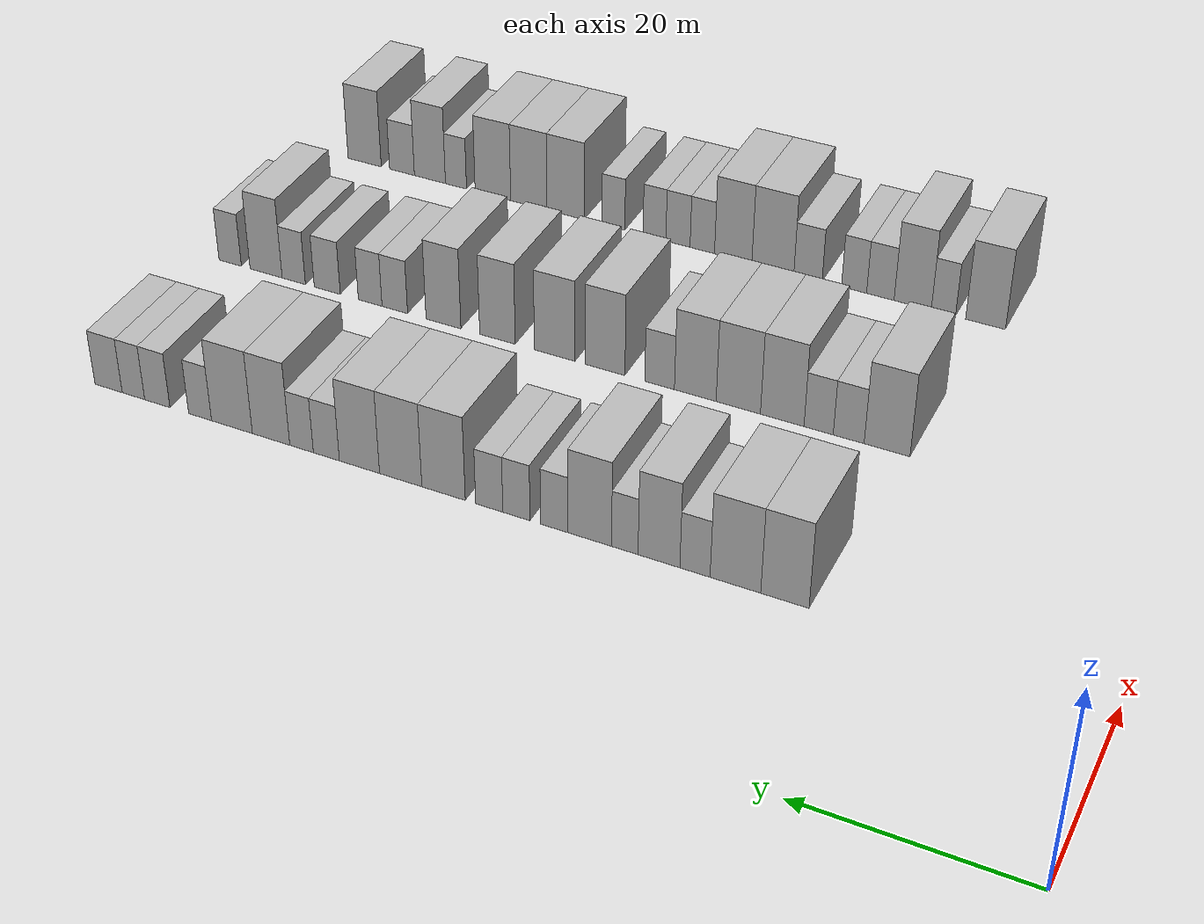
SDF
<sdf version="1.6">
 <world name="default">
  <model name="building_73">
   <static>1</static>
   <pose>25.0000 27.7432 0 0.000000 0.000000 0.000000</pose>
   <link name="link">
    <pose>0 0 4.50 0 0 0</pose>
    <collision name="collision"><geometry><box><size>10.0000 4.2041 9.0000</size></box></geometry></collision>
    <visual name="visual">
     <cast_shadows>0</cast_shadows>
     <geometry><box><size>10.0000 4.2041 9.0000</size></box></geometry>
     <material>
      <script>
       <uri>model://HANNAS_wall/materials/scripts</uri>
       <uri>model://HANNAS_wall/materials/textures</uri>
       <name>vrc/HANNAS_wall</name>
      </script>
     </material>
    </visual>
   </link>
  </model>
  <model name="building_74">
   <static>1</static>
   <pose>25.0000 32.0811 0 0.000000 0.000000 0.000000</pose>
   <link name="link">
    <pose>0 0 4.50 0 0 0</pose>
    <collision name="collision"><geometry><box><size>10.0000 4.4717 9.0000</size></box></geometry></collision>
    <visual name="visual">
     <cast_shadows>0</cast_shadows>
     <geometry><box><size>10.0000 4.4717 9.0000</size></box></geometry>
     <material>
      <script>
       <uri>model://HANNAS_wall/materials/scripts</uri>
       <uri>model://HANNAS_wall/materials/textures</uri>
       <name>vrc/HANNAS_wall</name>
      </script>
     </material>
    </visual>
   </link>
  </model>
  <model name="building_75">
   <static>1</static>
   <pose>25.0000 35.6679 0 0.000000 0.000000 0.000000</pose>
   <link name="link">
    <pose>0 0 3.00 0 0 0</pose>
    <collision name="collision"><geometry><box><size>10.0000 2.7019 6.0000</size></box></geometry></collision>
    <visual name="visual">
     <cast_shadows>0</cast_shadows>
     <geometry><box><size>10.0000 2.7019 6.0000</size></box></geometry>
     <material>
      <script>
       <uri>model://HANNAS_wall/materials/scripts</uri>
       <uri>model://HANNAS_wall/materials/textures</uri>
       <name>vrc/HANNAS_wall</name>
      </script>
     </material>
    </visual>
   </link>
  </model>
  <model name="building_76">
   <static>1</static>
   <pose>25.0000 38.9119 0 0.000000 0.000000 0.000000</pose>
   <link name="link">
    <pose>0 0 4.50 0 0 0</pose>
    <collision name="collision"><geometry><box><size>10.0000 3.7861 9.0000</size></box></geometry></collision>
    <visual name="visual">
     <cast_shadows>0</cast_shadows>
     <geometry><box><size>10.0000 3.7861 9.0000</size></box></geometry>
     <material>
      <script>
       <uri>model://HANNAS_wall/materials/scripts</uri>
       <uri>model://HANNAS_wall/materials/textures</uri>
       <name>vrc/HANNAS_wall</name>
      </script>
     </material>
    </visual>
   </link>
  </model>
  <model name="building_77">
   <static>1</static>
   <pose>25.0000 42.0162 0 0.000000 0.000000 0.000000</pose>
   <link name="link">
    <pose>0 0 3.00 0 0 0</pose>
    <collision name="collision"><geometry><box><size>10.0000 2.4225 6.0000</size></box></geometry></collision>
    <visual name="visual">
     <cast_shadows>0</cast_shadows>
     <geometry><box><size>10.0000 2.4225 6.0000</size></box></geometry>
     <material>
      <script>
       <uri>model://HANNAS_wall/materials/scripts</uri>
       <uri>model://HANNAS_wall/materials/textures</uri>
       <name>vrc/HANNAS_wall</name>
      </script>
     </material>
    </visual>
   </link>
  </model>
  <model name="building_78">
   <static>1</static>
   <pose>25.0000 45.2444 0 0.000000 0.000000 0.000000</pose>
   <link name="link">
    <pose>0 0 4.50 0 0 0</pose>
    <collision name="collision"><geometry><box><size>10.0000 4.0340 9.0000</size></box></geometry></collision>
    <visual name="visual">
     <cast_shadows>0</cast_shadows>
     <geometry><box><size>10.0000 4.0340 9.0000</size></box></geometry>
     <material>
      <script>
       <uri>model://HANNAS_wall/materials/scripts</uri>
       <uri>model://HANNAS_wall/materials/textures</uri>
       <name>vrc/HANNAS_wall</name>
      </script>
     </material>
    </visual>
   </link>
  </model>
  <model name="building_79">
   <static>1</static>
   <pose>25.0000 48.5405 0 0.000000 0.000000 0.000000</pose>
   <link name="link">
    <pose>0 0 3.00 0 0 0</pose>
    <collision name="collision"><geometry><box><size>10.0000 2.5583 6.0000</size></box></geometry></collision>
    <visual name="visual">
     <cast_shadows>0</cast_shadows>
     <geometry><box><size>10.0000 2.5583 6.0000</size></box></geometry>
     <material>
      <script>
       <uri>model://HANNAS_wall/materials/scripts</uri>
       <uri>model://HANNAS_wall/materials/textures</uri>
       <name>vrc/HANNAS_wall</name>
      </script>
     </material>
    </visual>
   </link>
  </model>
  <model name="building_80">
   <static>1</static>
   <pose>25.0000 52.1111 0 0.000000 0.000000 0.000000</pose>
   <link name="link">
    <pose>0 0 3.00 0 0 0</pose>
    <collision name="collision"><geometry><box><size>10.0000 2.5828 6.0000</size></box></geometry></collision>
    <visual name="visual">
     <cast_shadows>0</cast_shadows>
     <geometry><box><size>10.0000 2.5828 6.0000</size></box></geometry>
     <material>
      <script>
       <uri>model://HANNAS_wall/materials/scripts</uri>
       <uri>model://HANNAS_wall/materials/textures</uri>
       <name>vrc/HANNAS_wall</name>
      </script>
     </material>
    </visual>
   </link>
  </model>
  <model name="building_81">
   <static>1</static>
   <pose>25.0000 54.7055 0 0.000000 0.000000 0.000000</pose>
   <link name="link">
    <pose>0 0 3.00 0 0 0</pose>
    <collision name="collision"><geometry><box><size>10.0000 2.6060 6.0000</size></box></geometry></collision>
    <visual name="visual">
     <cast_shadows>0</cast_shadows>
     <geometry><box><size>10.0000 2.6060 6.0000</size></box></geometry>
     <material>
      <script>
       <uri>model://HANNAS_wall/materials/scripts</uri>
       <uri>model://HANNAS_wall/materials/textures</uri>
       <name>vrc/HANNAS_wall</name>
      </script>
     </material>
    </visual>
   </link>
  </model>
  <model name="building_82">
   <static>1</static>
   <pose>25.0000 59.1252 0 0.000000 0.000000 0.000000</pose>
   <link name="link">
    <pose>0 0 4.50 0 0 0</pose>
    <collision name="collision"><geometry><box><size>10.0000 4.2336 9.0000</size></box></geometry></collision>
    <visual name="visual">
     <cast_shadows>0</cast_shadows>
     <geometry><box><size>10.0000 4.2336 9.0000</size></box></geometry>
     <material>
      <script>
       <uri>model://HANNAS_wall/materials/scripts</uri>
       <uri>model://HANNAS_wall/materials/textures</uri>
       <name>vrc/HANNAS_wall</name>
      </script>
     </material>
    </visual>
   </link>
  </model>
  <model name="building_83">
   <static>1</static>
   <pose>25.0000 63.3339 0 0.000000 0.000000 0.000000</pose>
   <link name="link">
    <pose>0 0 4.50 0 0 0</pose>
    <collision name="collision"><geometry><box><size>10.0000 4.1838 9.0000</size></box></geometry></collision>
    <visual name="visual">
     <cast_shadows>0</cast_shadows>
     <geometry><box><size>10.0000 4.1838 9.0000</size></box></geometry>
     <material>
      <script>
       <uri>model://HANNAS_wall/materials/scripts</uri>
       <uri>model://HANNAS_wall/materials/textures</uri>
       <name>vrc/HANNAS_wall</name>
      </script>
     </material>
    </visual>
   </link>
  </model>
  <model name="building_84">
   <static>1</static>
   <pose>25.0000 67.4356 0 0.000000 0.000000 0.000000</pose>
   <link name="link">
    <pose>0 0 4.50 0 0 0</pose>
    <collision name="collision"><geometry><box><size>10.0000 4.0194 9.0000</size></box></geometry></collision>
    <visual name="visual">
     <cast_shadows>0</cast_shadows>
     <geometry><box><size>10.0000 4.0194 9.0000</size></box></geometry>
     <material>
      <script>
       <uri>model://HANNAS_wall/materials/scripts</uri>
       <uri>model://HANNAS_wall/materials/textures</uri>
       <name>vrc/HANNAS_wall</name>
      </script>
     </material>
    </visual>
   </link>
  </model>
  <model name="building_85">
   <static>1</static>
   <pose>25.0000 70.7655 0 0.000000 0.000000 0.000000</pose>
   <link name="link">
    <pose>0 0 3.00 0 0 0</pose>
    <collision name="collision"><geometry><box><size>10.0000 2.6405 6.0000</size></box></geometry></collision>
    <visual name="visual">
     <cast_shadows>0</cast_shadows>
     <geometry><box><size>10.0000 2.6405 6.0000</size></box></geometry>
     <material>
      <script>
       <uri>model://HANNAS_wall/materials/scripts</uri>
       <uri>model://HANNAS_wall/materials/textures</uri>
       <name>vrc/HANNAS_wall</name>
      </script>
     </material>
    </visual>
   </link>
  </model>
  <model name="building_86">
   <static>1</static>
   <pose>25.0000 73.2905 0 0.000000 0.000000 0.000000</pose>
   <link name="link">
    <pose>0 0 3.00 0 0 0</pose>
    <collision name="collision"><geometry><box><size>10.0000 2.4094 6.0000</size></box></geometry></collision>
    <visual name="visual">
     <cast_shadows>0</cast_shadows>
     <geometry><box><size>10.0000 2.4094 6.0000</size></box></geometry>
     <material>
      <script>
       <uri>model://HANNAS_wall/materials/scripts</uri>
       <uri>model://HANNAS_wall/materials/textures</uri>
       <name>vrc/HANNAS_wall</name>
      </script>
     </material>
    </visual>
   </link>
  </model>
  <model name="building_87">
   <static>1</static>
   <pose>25.0000 76.4296 0 0.000000 0.000000 0.000000</pose>
   <link name="link">
    <pose>0 0 4.50 0 0 0</pose>
    <collision name="collision"><geometry><box><size>10.0000 3.8688 9.0000</size></box></geometry></collision>
    <visual name="visual">
     <cast_shadows>0</cast_shadows>
     <geometry><box><size>10.0000 3.8688 9.0000</size></box></geometry>
     <material>
      <script>
       <uri>model://HANNAS_wall/materials/scripts</uri>
       <uri>model://HANNAS_wall/materials/textures</uri>
       <name>vrc/HANNAS_wall</name>
      </script>
     </material>
    </visual>
   </link>
  </model>
  <model name="building_88">
   <static>1</static>
   <pose>25.0000 80.5083 0 0.000000 0.000000 0.000000</pose>
   <link name="link">
    <pose>0 0 4.50 0 0 0</pose>
    <collision name="collision"><geometry><box><size>10.0000 4.2887 9.0000</size></box></geometry></collision>
    <visual name="visual">
     <cast_shadows>0</cast_shadows>
     <geometry><box><size>10.0000 4.2887 9.0000</size></box></geometry>
     <material>
      <script>
       <uri>model://HANNAS_wall/materials/scripts</uri>
       <uri>model://HANNAS_wall/materials/textures</uri>
       <name>vrc/HANNAS_wall</name>
      </script>
     </material>
    </visual>
   </link>
  </model>
  <model name="building_89">
   <static>1</static>
   <pose>25.0000 83.8661 0 0.000000 0.000000 0.000000</pose>
   <link name="link">
    <pose>0 0 3.00 0 0 0</pose>
    <collision name="collision"><geometry><box><size>10.0000 2.4269 6.0000</size></box></geometry></collision>
    <visual name="visual">
     <cast_shadows>0</cast_shadows>
     <geometry><box><size>10.0000 2.4269 6.0000</size></box></geometry>
     <material>
      <script>
       <uri>model://HANNAS_wall/materials/scripts</uri>
       <uri>model://HANNAS_wall/materials/textures</uri>
       <name>vrc/HANNAS_wall</name>
      </script>
     </material>
    </visual>
   </link>
  </model>
  <model name="building_90">
   <static>1</static>
   <pose>25.0000 88.4380 0 0.000000 0.000000 0.000000</pose>
   <link name="link">
    <pose>0 0 3.00 0 0 0</pose>
    <collision name="collision"><geometry><box><size>10.0000 2.7169 6.0000</size></box></geometry></collision>
    <visual name="visual">
     <cast_shadows>0</cast_shadows>
     <geometry><box><size>10.0000 2.7169 6.0000</size></box></geometry>
     <material>
      <script>
       <uri>model://HANNAS_wall/materials/scripts</uri>
       <uri>model://HANNAS_wall/materials/textures</uri>
       <name>vrc/HANNAS_wall</name>
      </script>
     </material>
    </visual>
   </link>
  </model>
  <model name="building_91">
   <static>1</static>
   <pose>25.0000 91.0174 0 0.000000 0.000000 0.000000</pose>
   <link name="link">
    <pose>0 0 3.00 0 0 0</pose>
    <collision name="collision"><geometry><box><size>10.0000 2.4419 6.0000</size></box></geometry></collision>
    <visual name="visual">
     <cast_shadows>0</cast_shadows>
     <geometry><box><size>10.0000 2.4419 6.0000</size></box></geometry>
     <material>
      <script>
       <uri>model://HANNAS_wall/materials/scripts</uri>
       <uri>model://HANNAS_wall/materials/textures</uri>
       <name>vrc/HANNAS_wall</name>
      </script>
     </material>
    </visual>
   </link>
  </model>
  <model name="building_92">
   <static>1</static>
   <pose>25.0000 93.7304 0 0.000000 0.000000 0.000000</pose>
   <link name="link">
    <pose>0 0 3.00 0 0 0</pose>
    <collision name="collision"><geometry><box><size>10.0000 2.9841 6.0000</size></box></geometry></collision>
    <visual name="visual">
     <cast_shadows>0</cast_shadows>
     <geometry><box><size>10.0000 2.9841 6.0000</size></box></geometry>
     <material>
      <script>
       <uri>model://HANNAS_wall/materials/scripts</uri>
       <uri>model://HANNAS_wall/materials/textures</uri>
       <name>vrc/HANNAS_wall</name>
      </script>
     </material>
    </visual>
   </link>
  </model>
  <model name="building_200">
   <static>1</static>
   <pose>47.0000 26.7189 0 0.000000 0.000000 0.000000</pose>
   <link name="link">
    <pose>0 0 4.50 0 0 0</pose>
    <collision name="collision"><geometry><box><size>10.0000 4.2521 9.0000</size></box></geometry></collision>
    <visual name="visual">
     <cast_shadows>0</cast_shadows>
     <geometry><box><size>10.0000 4.2521 9.0000</size></box></geometry>
     <material>
      <script>
       <uri>model://HANNAS_wall/materials/scripts</uri>
       <uri>model://HANNAS_wall/materials/textures</uri>
       <name>vrc/HANNAS_wall</name>
      </script>
     </material>
    </visual>
   </link>
  </model>
  <model name="building_201">
   <static>1</static>
   <pose>47.0000 30.2941 0 0.000000 0.000000 0.000000</pose>
   <link name="link">
    <pose>0 0 3.00 0 0 0</pose>
    <collision name="collision"><geometry><box><size>10.0000 2.8982 6.0000</size></box></geometry></collision>
    <visual name="visual">
     <cast_shadows>0</cast_shadows>
     <geometry><box><size>10.0000 2.8982 6.0000</size></box></geometry>
     <material>
      <script>
       <uri>model://HANNAS_wall/materials/scripts</uri>
       <uri>model://HANNAS_wall/materials/textures</uri>
       <name>vrc/HANNAS_wall</name>
      </script>
     </material>
    </visual>
   </link>
  </model>
  <model name="building_202">
   <static>1</static>
   <pose>47.0000 33.1275 0 0.000000 0.000000 0.000000</pose>
   <link name="link">
    <pose>0 0 3.00 0 0 0</pose>
    <collision name="collision"><geometry><box><size>10.0000 2.7687 6.0000</size></box></geometry></collision>
    <visual name="visual">
     <cast_shadows>0</cast_shadows>
     <geometry><box><size>10.0000 2.7687 6.0000</size></box></geometry>
     <material>
      <script>
       <uri>model://HANNAS_wall/materials/scripts</uri>
       <uri>model://HANNAS_wall/materials/textures</uri>
       <name>vrc/HANNAS_wall</name>
      </script>
     </material>
    </visual>
   </link>
  </model>
  <model name="building_203">
   <static>1</static>
   <pose>47.0000 36.6004 0 0.000000 0.000000 0.000000</pose>
   <link name="link">
    <pose>0 0 4.50 0 0 0</pose>
    <collision name="collision"><geometry><box><size>10.0000 4.1770 9.0000</size></box></geometry></collision>
    <visual name="visual">
     <cast_shadows>0</cast_shadows>
     <geometry><box><size>10.0000 4.1770 9.0000</size></box></geometry>
     <material>
      <script>
       <uri>model://HANNAS_wall/materials/scripts</uri>
       <uri>model://HANNAS_wall/materials/textures</uri>
       <name>vrc/HANNAS_wall</name>
      </script>
     </material>
    </visual>
   </link>
  </model>
  <model name="building_204">
   <static>1</static>
   <pose>47.0000 40.8419 0 0.000000 0.000000 0.000000</pose>
   <link name="link">
    <pose>0 0 4.50 0 0 0</pose>
    <collision name="collision"><geometry><box><size>10.0000 4.3059 9.0000</size></box></geometry></collision>
    <visual name="visual">
     <cast_shadows>0</cast_shadows>
     <geometry><box><size>10.0000 4.3059 9.0000</size></box></geometry>
     <material>
      <script>
       <uri>model://HANNAS_wall/materials/scripts</uri>
       <uri>model://HANNAS_wall/materials/textures</uri>
       <name>vrc/HANNAS_wall</name>
      </script>
     </material>
    </visual>
   </link>
  </model>
  <model name="building_205">
   <static>1</static>
   <pose>47.0000 45.0529 0 0.000000 0.000000 0.000000</pose>
   <link name="link">
    <pose>0 0 4.50 0 0 0</pose>
    <collision name="collision"><geometry><box><size>10.0000 4.1163 9.0000</size></box></geometry></collision>
    <visual name="visual">
     <cast_shadows>0</cast_shadows>
     <geometry><box><size>10.0000 4.1163 9.0000</size></box></geometry>
     <material>
      <script>
       <uri>model://HANNAS_wall/materials/scripts</uri>
       <uri>model://HANNAS_wall/materials/textures</uri>
       <name>vrc/HANNAS_wall</name>
      </script>
     </material>
    </visual>
   </link>
  </model>
  <model name="building_206">
   <static>1</static>
   <pose>47.0000 48.5873 0 0.000000 0.000000 0.000000</pose>
   <link name="link">
    <pose>0 0 3.00 0 0 0</pose>
    <collision name="collision"><geometry><box><size>10.0000 2.9526 6.0000</size></box></geometry></collision>
    <visual name="visual">
     <cast_shadows>0</cast_shadows>
     <geometry><box><size>10.0000 2.9526 6.0000</size></box></geometry>
     <material>
      <script>
       <uri>model://HANNAS_wall/materials/scripts</uri>
       <uri>model://HANNAS_wall/materials/textures</uri>
       <name>vrc/HANNAS_wall</name>
      </script>
     </material>
    </visual>
   </link>
  </model>
  <model name="building_207">
   <static>1</static>
   <pose>47.0000 54.0988 0 0.000000 0.000000 0.000000</pose>
   <link name="link">
    <pose>0 0 4.50 0 0 0</pose>
    <collision name="collision"><geometry><box><size>10.0000 4.0703 9.0000</size></box></geometry></collision>
    <visual name="visual">
     <cast_shadows>0</cast_shadows>
     <geometry><box><size>10.0000 4.0703 9.0000</size></box></geometry>
     <material>
      <script>
       <uri>model://HANNAS_wall/materials/scripts</uri>
       <uri>model://HANNAS_wall/materials/textures</uri>
       <name>vrc/HANNAS_wall</name>
      </script>
     </material>
    </visual>
   </link>
  </model>
  <model name="building_208">
   <static>1</static>
   <pose>47.0000 59.2337 0 0.000000 0.000000 0.000000</pose>
   <link name="link">
    <pose>0 0 4.50 0 0 0</pose>
    <collision name="collision"><geometry><box><size>10.0000 4.1995 9.0000</size></box></geometry></collision>
    <visual name="visual">
     <cast_shadows>0</cast_shadows>
     <geometry><box><size>10.0000 4.1995 9.0000</size></box></geometry>
     <material>
      <script>
       <uri>model://HANNAS_wall/materials/scripts</uri>
       <uri>model://HANNAS_wall/materials/textures</uri>
       <name>vrc/HANNAS_wall</name>
      </script>
     </material>
    </visual>
   </link>
  </model>
  <model name="building_209">
   <static>1</static>
   <pose>47.0000 65.2082 0 0.000000 0.000000 0.000000</pose>
   <link name="link">
    <pose>0 0 4.50 0 0 0</pose>
    <collision name="collision"><geometry><box><size>10.0000 3.7494 9.0000</size></box></geometry></collision>
    <visual name="visual">
     <cast_shadows>0</cast_shadows>
     <geometry><box><size>10.0000 3.7494 9.0000</size></box></geometry>
     <material>
      <script>
       <uri>model://HANNAS_wall/materials/scripts</uri>
       <uri>model://HANNAS_wall/materials/textures</uri>
       <name>vrc/HANNAS_wall</name>
      </script>
     </material>
    </visual>
   </link>
  </model>
  <model name="building_210">
   <static>1</static>
   <pose>47.0000 70.9546 0 0.000000 0.000000 0.000000</pose>
   <link name="link">
    <pose>0 0 4.50 0 0 0</pose>
    <collision name="collision"><geometry><box><size>10.0000 3.7433 9.0000</size></box></geometry></collision>
    <visual name="visual">
     <cast_shadows>0</cast_shadows>
     <geometry><box><size>10.0000 3.7433 9.0000</size></box></geometry>
     <material>
      <script>
       <uri>model://HANNAS_wall/materials/scripts</uri>
       <uri>model://HANNAS_wall/materials/textures</uri>
       <name>vrc/HANNAS_wall</name>
      </script>
     </material>
    </visual>
   </link>
  </model>
  <model name="building_211">
   <static>1</static>
   <pose>47.0000 76.2236 0 0.000000 0.000000 0.000000</pose>
   <link name="link">
    <pose>0 0 3.00 0 0 0</pose>
    <collision name="collision"><geometry><box><size>10.0000 2.7949 6.0000</size></box></geometry></collision>
    <visual name="visual">
     <cast_shadows>0</cast_shadows>
     <geometry><box><size>10.0000 2.7949 6.0000</size></box></geometry>
     <material>
      <script>
       <uri>model://HANNAS_wall/materials/scripts</uri>
       <uri>model://HANNAS_wall/materials/textures</uri>
       <name>vrc/HANNAS_wall</name>
      </script>
     </material>
    </visual>
   </link>
  </model>
  <model name="building_212">
   <static>1</static>
   <pose>47.0000 78.9237 0 0.000000 0.000000 0.000000</pose>
   <link name="link">
    <pose>0 0 3.00 0 0 0</pose>
    <collision name="collision"><geometry><box><size>10.0000 2.6053 6.0000</size></box></geometry></collision>
    <visual name="visual">
     <cast_shadows>0</cast_shadows>
     <geometry><box><size>10.0000 2.6053 6.0000</size></box></geometry>
     <material>
      <script>
       <uri>model://HANNAS_wall/materials/scripts</uri>
       <uri>model://HANNAS_wall/materials/textures</uri>
       <name>vrc/HANNAS_wall</name>
      </script>
     </material>
    </visual>
   </link>
  </model>
  <model name="building_213">
   <static>1</static>
   <pose>47.0000 83.6803 0 0.000000 0.000000 0.000000</pose>
   <link name="link">
    <pose>0 0 3.00 0 0 0</pose>
    <collision name="collision"><geometry><box><size>10.0000 2.9078 6.0000</size></box></geometry></collision>
    <visual name="visual">
     <cast_shadows>0</cast_shadows>
     <geometry><box><size>10.0000 2.9078 6.0000</size></box></geometry>
     <material>
      <script>
       <uri>model://HANNAS_wall/materials/scripts</uri>
       <uri>model://HANNAS_wall/materials/textures</uri>
       <name>vrc/HANNAS_wall</name>
      </script>
     </material>
    </visual>
   </link>
  </model>
  <model name="building_214">
   <static>1</static>
   <pose>47.0000 87.4477 0 0.000000 0.000000 0.000000</pose>
   <link name="link">
    <pose>0 0 3.00 0 0 0</pose>
    <collision name="collision"><geometry><box><size>10.0000 2.6271 6.0000</size></box></geometry></collision>
    <visual name="visual">
     <cast_shadows>0</cast_shadows>
     <geometry><box><size>10.0000 2.6271 6.0000</size></box></geometry>
     <material>
      <script>
       <uri>model://HANNAS_wall/materials/scripts</uri>
       <uri>model://HANNAS_wall/materials/textures</uri>
       <name>vrc/HANNAS_wall</name>
      </script>
     </material>
    </visual>
   </link>
  </model>
  <model name="building_215">
   <static>1</static>
   <pose>47.0000 90.5943 0 0.000000 0.000000 0.000000</pose>
   <link name="link">
    <pose>0 0 4.50 0 0 0</pose>
    <collision name="collision"><geometry><box><size>10.0000 3.6659 9.0000</size></box></geometry></collision>
    <visual name="visual">
     <cast_shadows>0</cast_shadows>
     <geometry><box><size>10.0000 3.6659 9.0000</size></box></geometry>
     <material>
      <script>
       <uri>model://HANNAS_wall/materials/scripts</uri>
       <uri>model://HANNAS_wall/materials/textures</uri>
       <name>vrc/HANNAS_wall</name>
      </script>
     </material>
    </visual>
   </link>
  </model>
  <model name="building_216">
   <static>1</static>
   <pose>47.0000 94.7193 0 0.000000 0.000000 0.000000</pose>
   <link name="link">
    <pose>0 0 3.00 0 0 0</pose>
    <collision name="collision"><geometry><box><size>10.0000 2.5842 6.0000</size></box></geometry></collision>
    <visual name="visual">
     <cast_shadows>0</cast_shadows>
     <geometry><box><size>10.0000 2.5842 6.0000</size></box></geometry>
     <material>
      <script>
       <uri>model://HANNAS_wall/materials/scripts</uri>
       <uri>model://HANNAS_wall/materials/textures</uri>
       <name>vrc/HANNAS_wall</name>
      </script>
     </material>
    </visual>
   </link>
  </model>
  <model name="building_316">
   <static>1</static>
   <pose>69.0000 24.6007 0 0.000000 0.000000 0.000000</pose>
   <link name="link">
    <pose>0 0 4.50 0 0 0</pose>
    <collision name="collision"><geometry><box><size>10.0000 3.9194 9.0000</size></box></geometry></collision>
    <visual name="visual">
     <cast_shadows>0</cast_shadows>
     <geometry><box><size>10.0000 3.9194 9.0000</size></box></geometry>
     <material>
      <script>
       <uri>model://HANNAS_wall/materials/scripts</uri>
       <uri>model://HANNAS_wall/materials/textures</uri>
       <name>vrc/HANNAS_wall</name>
      </script>
     </material>
    </visual>
   </link>
  </model>
  <model name="building_317">
   <static>1</static>
   <pose>69.0000 28.7644 0 0.000000 0.000000 0.000000</pose>
   <link name="link">
    <pose>0 0 3.00 0 0 0</pose>
    <collision name="collision"><geometry><box><size>10.0000 2.4079 6.0000</size></box></geometry></collision>
    <visual name="visual">
     <cast_shadows>0</cast_shadows>
     <geometry><box><size>10.0000 2.4079 6.0000</size></box></geometry>
     <material>
      <script>
       <uri>model://HANNAS_wall/materials/scripts</uri>
       <uri>model://HANNAS_wall/materials/textures</uri>
       <name>vrc/HANNAS_wall</name>
      </script>
     </material>
    </visual>
   </link>
  </model>
  <model name="building_318">
   <static>1</static>
   <pose>69.0000 31.8381 0 0.000000 0.000000 0.000000</pose>
   <link name="link">
    <pose>0 0 4.50 0 0 0</pose>
    <collision name="collision"><geometry><box><size>10.0000 3.7396 9.0000</size></box></geometry></collision>
    <visual name="visual">
     <cast_shadows>0</cast_shadows>
     <geometry><box><size>10.0000 3.7396 9.0000</size></box></geometry>
     <material>
      <script>
       <uri>model://HANNAS_wall/materials/scripts</uri>
       <uri>model://HANNAS_wall/materials/textures</uri>
       <name>vrc/HANNAS_wall</name>
      </script>
     </material>
    </visual>
   </link>
  </model>
  <model name="building_319">
   <static>1</static>
   <pose>69.0000 35.1005 0 0.000000 0.000000 0.000000</pose>
   <link name="link">
    <pose>0 0 3.00 0 0 0</pose>
    <collision name="collision"><geometry><box><size>10.0000 2.7852 6.0000</size></box></geometry></collision>
    <visual name="visual">
     <cast_shadows>0</cast_shadows>
     <geometry><box><size>10.0000 2.7852 6.0000</size></box></geometry>
     <material>
      <script>
       <uri>model://HANNAS_wall/materials/scripts</uri>
       <uri>model://HANNAS_wall/materials/textures</uri>
       <name>vrc/HANNAS_wall</name>
      </script>
     </material>
    </visual>
   </link>
  </model>
  <model name="building_320">
   <static>1</static>
   <pose>69.0000 37.7787 0 0.000000 0.000000 0.000000</pose>
   <link name="link">
    <pose>0 0 3.00 0 0 0</pose>
    <collision name="collision"><geometry><box><size>10.0000 2.5713 6.0000</size></box></geometry></collision>
    <visual name="visual">
     <cast_shadows>0</cast_shadows>
     <geometry><box><size>10.0000 2.5713 6.0000</size></box></geometry>
     <material>
      <script>
       <uri>model://HANNAS_wall/materials/scripts</uri>
       <uri>model://HANNAS_wall/materials/textures</uri>
       <name>vrc/HANNAS_wall</name>
      </script>
     </material>
    </visual>
   </link>
  </model>
  <model name="building_321">
   <static>1</static>
   <pose>69.0000 42.5335 0 0.000000 0.000000 0.000000</pose>
   <link name="link">
    <pose>0 0 3.00 0 0 0</pose>
    <collision name="collision"><geometry><box><size>10.0000 2.9384 6.0000</size></box></geometry></collision>
    <visual name="visual">
     <cast_shadows>0</cast_shadows>
     <geometry><box><size>10.0000 2.9384 6.0000</size></box></geometry>
     <material>
      <script>
       <uri>model://HANNAS_wall/materials/scripts</uri>
       <uri>model://HANNAS_wall/materials/textures</uri>
       <name>vrc/HANNAS_wall</name>
      </script>
     </material>
    </visual>
   </link>
  </model>
  <model name="building_322">
   <static>1</static>
   <pose>69.0000 46.2091 0 0.000000 0.000000 0.000000</pose>
   <link name="link">
    <pose>0 0 4.50 0 0 0</pose>
    <collision name="collision"><geometry><box><size>10.0000 4.4128 9.0000</size></box></geometry></collision>
    <visual name="visual">
     <cast_shadows>0</cast_shadows>
     <geometry><box><size>10.0000 4.4128 9.0000</size></box></geometry>
     <material>
      <script>
       <uri>model://HANNAS_wall/materials/scripts</uri>
       <uri>model://HANNAS_wall/materials/textures</uri>
       <name>vrc/HANNAS_wall</name>
      </script>
     </material>
    </visual>
   </link>
  </model>
  <model name="building_323">
   <static>1</static>
   <pose>69.0000 50.4025 0 0.000000 0.000000 0.000000</pose>
   <link name="link">
    <pose>0 0 4.50 0 0 0</pose>
    <collision name="collision"><geometry><box><size>10.0000 3.9740 9.0000</size></box></geometry></collision>
    <visual name="visual">
     <cast_shadows>0</cast_shadows>
     <geometry><box><size>10.0000 3.9740 9.0000</size></box></geometry>
     <material>
      <script>
       <uri>model://HANNAS_wall/materials/scripts</uri>
       <uri>model://HANNAS_wall/materials/textures</uri>
       <name>vrc/HANNAS_wall</name>
      </script>
     </material>
    </visual>
   </link>
  </model>
  <model name="building_324">
   <static>1</static>
   <pose>69.0000 53.7053 0 0.000000 0.000000 0.000000</pose>
   <link name="link">
    <pose>0 0 3.00 0 0 0</pose>
    <collision name="collision"><geometry><box><size>10.0000 2.6316 6.0000</size></box></geometry></collision>
    <visual name="visual">
     <cast_shadows>0</cast_shadows>
     <geometry><box><size>10.0000 2.6316 6.0000</size></box></geometry>
     <material>
      <script>
       <uri>model://HANNAS_wall/materials/scripts</uri>
       <uri>model://HANNAS_wall/materials/textures</uri>
       <name>vrc/HANNAS_wall</name>
      </script>
     </material>
    </visual>
   </link>
  </model>
  <model name="building_325">
   <static>1</static>
   <pose>69.0000 56.3324 0 0.000000 0.000000 0.000000</pose>
   <link name="link">
    <pose>0 0 3.00 0 0 0</pose>
    <collision name="collision"><geometry><box><size>10.0000 2.6226 6.0000</size></box></geometry></collision>
    <visual name="visual">
     <cast_shadows>0</cast_shadows>
     <geometry><box><size>10.0000 2.6226 6.0000</size></box></geometry>
     <material>
      <script>
       <uri>model://HANNAS_wall/materials/scripts</uri>
       <uri>model://HANNAS_wall/materials/textures</uri>
       <name>vrc/HANNAS_wall</name>
      </script>
     </material>
    </visual>
   </link>
  </model>
  <model name="building_326">
   <static>1</static>
   <pose>69.0000 58.8902 0 0.000000 0.000000 0.000000</pose>
   <link name="link">
    <pose>0 0 3.00 0 0 0</pose>
    <collision name="collision"><geometry><box><size>10.0000 2.4930 6.0000</size></box></geometry></collision>
    <visual name="visual">
     <cast_shadows>0</cast_shadows>
     <geometry><box><size>10.0000 2.4930 6.0000</size></box></geometry>
     <material>
      <script>
       <uri>model://HANNAS_wall/materials/scripts</uri>
       <uri>model://HANNAS_wall/materials/textures</uri>
       <name>vrc/HANNAS_wall</name>
      </script>
     </material>
    </visual>
   </link>
  </model>
  <model name="building_327">
   <static>1</static>
   <pose>69.0000 63.3982 0 0.000000 0.000000 0.000000</pose>
   <link name="link">
    <pose>0 0 3.00 0 0 0</pose>
    <collision name="collision"><geometry><box><size>10.0000 2.5232 6.0000</size></box></geometry></collision>
    <visual name="visual">
     <cast_shadows>0</cast_shadows>
     <geometry><box><size>10.0000 2.5232 6.0000</size></box></geometry>
     <material>
      <script>
       <uri>model://HANNAS_wall/materials/scripts</uri>
       <uri>model://HANNAS_wall/materials/textures</uri>
       <name>vrc/HANNAS_wall</name>
      </script>
     </material>
    </visual>
   </link>
  </model>
  <model name="building_328">
   <static>1</static>
   <pose>69.0000 68.7476 0 0.000000 0.000000 0.000000</pose>
   <link name="link">
    <pose>0 0 4.50 0 0 0</pose>
    <collision name="collision"><geometry><box><size>10.0000 4.1755 9.0000</size></box></geometry></collision>
    <visual name="visual">
     <cast_shadows>0</cast_shadows>
     <geometry><box><size>10.0000 4.1755 9.0000</size></box></geometry>
     <material>
      <script>
       <uri>model://HANNAS_wall/materials/scripts</uri>
       <uri>model://HANNAS_wall/materials/textures</uri>
       <name>vrc/HANNAS_wall</name>
      </script>
     </material>
    </visual>
   </link>
  </model>
  <model name="building_329">
   <static>1</static>
   <pose>69.0000 72.9015 0 0.000000 0.000000 0.000000</pose>
   <link name="link">
    <pose>0 0 4.50 0 0 0</pose>
    <collision name="collision"><geometry><box><size>10.0000 4.1322 9.0000</size></box></geometry></collision>
    <visual name="visual">
     <cast_shadows>0</cast_shadows>
     <geometry><box><size>10.0000 4.1322 9.0000</size></box></geometry>
     <material>
      <script>
       <uri>model://HANNAS_wall/materials/scripts</uri>
       <uri>model://HANNAS_wall/materials/textures</uri>
       <name>vrc/HANNAS_wall</name>
      </script>
     </material>
    </visual>
   </link>
  </model>
  <model name="building_330">
   <static>1</static>
   <pose>69.0000 77.0228 0 0.000000 0.000000 0.000000</pose>
   <link name="link">
    <pose>0 0 4.50 0 0 0</pose>
    <collision name="collision"><geometry><box><size>10.0000 4.1105 9.0000</size></box></geometry></collision>
    <visual name="visual">
     <cast_shadows>0</cast_shadows>
     <geometry><box><size>10.0000 4.1105 9.0000</size></box></geometry>
     <material>
      <script>
       <uri>model://HANNAS_wall/materials/scripts</uri>
       <uri>model://HANNAS_wall/materials/textures</uri>
       <name>vrc/HANNAS_wall</name>
      </script>
     </material>
    </visual>
   </link>
  </model>
  <model name="building_331">
   <static>1</static>
   <pose>69.0000 81.3083 0 0.000000 0.000000 0.000000</pose>
   <link name="link">
    <pose>0 0 3.00 0 0 0</pose>
    <collision name="collision"><geometry><box><size>10.0000 2.4604 6.0000</size></box></geometry></collision>
    <visual name="visual">
     <cast_shadows>0</cast_shadows>
     <geometry><box><size>10.0000 2.4604 6.0000</size></box></geometry>
     <material>
      <script>
       <uri>model://HANNAS_wall/materials/scripts</uri>
       <uri>model://HANNAS_wall/materials/textures</uri>
       <name>vrc/HANNAS_wall</name>
      </script>
     </material>
    </visual>
   </link>
  </model>
  <model name="building_332">
   <static>1</static>
   <pose>69.0000 84.3690 0 0.000000 0.000000 0.000000</pose>
   <link name="link">
    <pose>0 0 4.50 0 0 0</pose>
    <collision name="collision"><geometry><box><size>10.0000 3.6610 9.0000</size></box></geometry></collision>
    <visual name="visual">
     <cast_shadows>0</cast_shadows>
     <geometry><box><size>10.0000 3.6610 9.0000</size></box></geometry>
     <material>
      <script>
       <uri>model://HANNAS_wall/materials/scripts</uri>
       <uri>model://HANNAS_wall/materials/textures</uri>
       <name>vrc/HANNAS_wall</name>
      </script>
     </material>
    </visual>
   </link>
  </model>
  <model name="building_333">
   <static>1</static>
   <pose>69.0000 87.6759 0 0.000000 0.000000 0.000000</pose>
   <link name="link">
    <pose>0 0 3.00 0 0 0</pose>
    <collision name="collision"><geometry><box><size>10.0000 2.9529 6.0000</size></box></geometry></collision>
    <visual name="visual">
     <cast_shadows>0</cast_shadows>
     <geometry><box><size>10.0000 2.9529 6.0000</size></box></geometry>
     <material>
      <script>
       <uri>model://HANNAS_wall/materials/scripts</uri>
       <uri>model://HANNAS_wall/materials/textures</uri>
       <name>vrc/HANNAS_wall</name>
      </script>
     </material>
    </visual>
   </link>
  </model>
  <model name="building_334">
   <static>1</static>
   <pose>69.0000 92.1453 0 0.000000 0.000000 0.000000</pose>
   <link name="link">
    <pose>0 0 4.50 0 0 0</pose>
    <collision name="collision"><geometry><box><size>10.0000 3.9860 9.0000</size></box></geometry></collision>
    <visual name="visual">
     <cast_shadows>0</cast_shadows>
     <geometry><box><size>10.0000 3.9860 9.0000</size></box></geometry>
     <material>
      <script>
       <uri>model://HANNAS_wall/materials/scripts</uri>
       <uri>model://HANNAS_wall/materials/textures</uri>
       <name>vrc/HANNAS_wall</name>
      </script>
     </material>
    </visual>
   </link>
  </model>
 </world>
</sdf>
